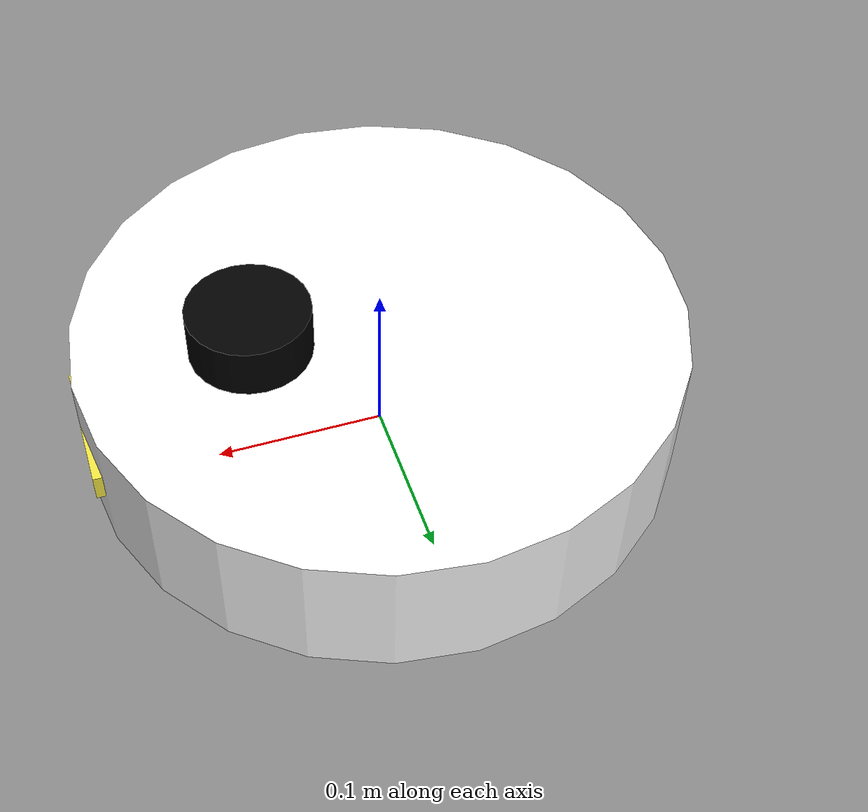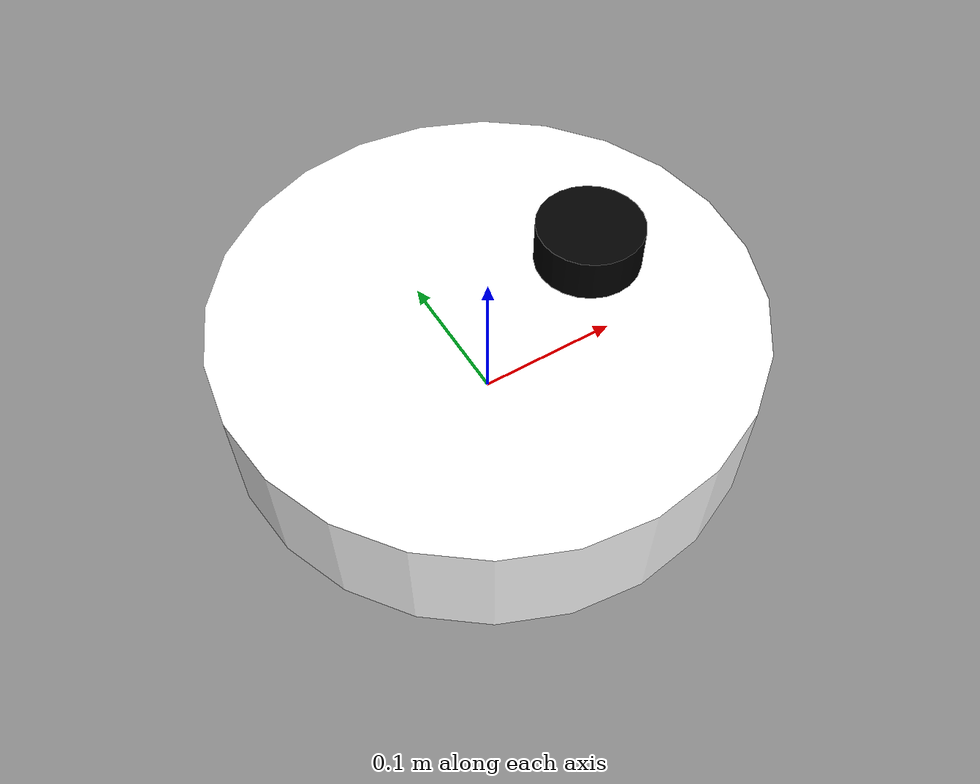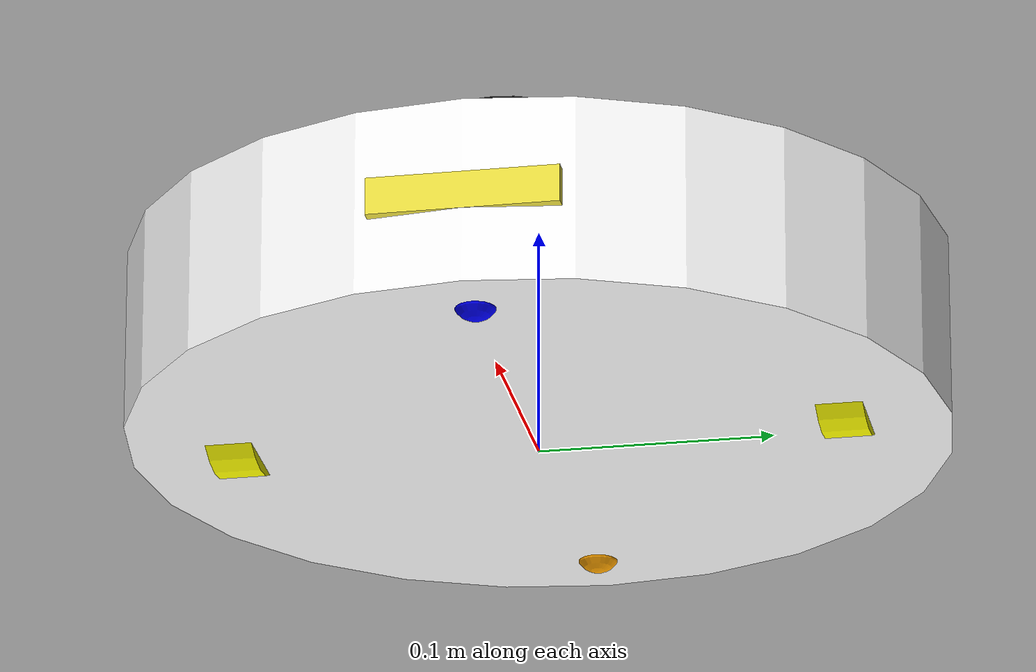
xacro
<?xml version="1.0"?>
<robot xmlns:xacro="http://www.ros.org/wiki/xacro" name="yttrium">

<xacro:property name="control_config"   value="$(find yttrium_description)/config/diff_drive_control.yaml" />

<xacro:property name="c_orange" value="1 0.647 0 1"/>
<xacro:property name="c_black" value="0 0 0 1"/>
<xacro:property name="wheel_separation" value="0.26" />

<xacro:property name="c_white" value="1 1 1 1"/>
<xacro:property name="c_yellow" value="1 1 0 1"/>
<xacro:property name="c_blue" value="0 0 1 1"/>

<xacro:property name="wheel_radius" value="0.04" />

  <link name="base_footprint"/>

  <!-- Base Link -->
  <link name="base_link">
    <visual>
      <geometry>
        <cylinder length="0.08" radius="0.175"/>
      </geometry>

      <material name="white">
        <color rgba="${c_white}"/>
      </material>
    </visual>
    <inertial>
      <mass value="4.2"/>
      <origin xyz="0 0 0"/>
      <inertia ixx="0.164" ixy="0" ixz="0" iyy="0.164" iyz="0" izz="0.025"/>
    </inertial>
    <collision>
      <geometry>
        <cylinder length="0.08" radius="0.175"/>
      </geometry>
    </collision>
  </link>

  <!-- IMU -->
  <link name="imu">
    <visual>
      <geometry>
        <box size="0.035 0.035 0.035"/>
      </geometry>
    </visual>
  </link>

  <joint name="imu_joint" type="fixed">
    <parent link="base_link"/>
    <child link="imu"/>
  </joint>

  <!-- Depth Camera -->
  <link name="camera_link">
    <visual>
      <geometry>
        <box size="0.02 0.016 0.08"/>
      </geometry>
    </visual>
    <inertial>
      <mass value="0.08"/>
      <origin xyz="0 0 0"/>
      <inertia ixx="0.000224" ixy="0" ixz="0" iyy="0.000256" iyz="0" izz="0.000032"/>
    </inertial>
    <collision>
      <geometry>
        <box size="0.02 0.016 0.08"/>
      </geometry>
    </collision>
  </link>

  <joint name="depth_camera_joint" type="fixed">
    <parent link="base_link"/>
    <child link="camera_link"/>
    <origin xyz="0.165 0 0" rpy="-1.5708 0 0"/>
  </joint>

  <!-- Empty Link for Depth Camera -->
  <link name = "optical_link">
  </link>

   <joint name="optical_depth_camera_joint" type="fixed">
    <parent link="camera_link"/>
    <child link="optical_link"/>
    <origin xyz="0.02 0 0" rpy="0 0 0"/>
  </joint>

  <!-- Lidar -->
  <link name="lidar_link">
    <visual>
      <geometry>
        <cylinder length="0.03" radius="0.035"/>
      </geometry>
      <material name="black">
        <color rgba="${c_black}"/>
      </material>
    </visual>
    <inertial>
      <mass value="0.20"/>
      <origin xyz="0 0 0"/>
      <inertia ixx="0.001225" ixy="0" ixz="0" iyy="0.001225" iyz="0" izz="0.0006125"/>
    </inertial>
    <collision>
      <geometry>
        <cylinder length="0.03" radius="0.035"/>
      </geometry>
    </collision>
  </link>
  <joint name="lidar_joint" type="fixed">
    <parent link="base_link"/>
    <child link="lidar_link"/>
    <origin xyz="0.075 0 0.055" rpy="0 0 0"/>
  </joint>
  <!-- Left Wheel -->
  <link name="wheel_left">
    <inertial>
      <mass value="0.05"/>
      <origin xyz="0 0 0"/>
      <inertia ixx="0.0004" ixy="0" ixz="0" iyy="0.0004" iyz="0" izz="0.0002"/>
    </inertial>
    <collision>
      <geometry>
        <cylinder length="0.02" radius="0.04"/>
      </geometry>
    </collision>
    <visual>
      <geometry>
        <cylinder length="0.02" radius="0.04"/>
      </geometry>
      <origin rpy="0 0 0" xyz="0 0 0"/>
      <material name="yellow">
        <color rgba="${c_yellow}"/>
      </material>
    </visual>
  </link>

  <joint name="base_to_wheel_left" type="continuous">
    <parent link="base_link"/>
    <child link="wheel_left"/>
    <origin xyz="0 0.13 -0.005" rpy="-1.5708 0 0"/>
    <axis xyz="0 0 1"/>
  </joint>

  <!-- Right Wheel -->
  <link name="wheel_right">
    <inertial>
      <mass value="0.05"/>
      <origin xyz="0 0 0"/>
      <inertia ixx="0.0004" ixy="0" ixz="0" iyy="0.0004" iyz="0" izz="0.0002"/>
    </inertial>
    <collision>
      <geometry>
        <cylinder length="0.02" radius="0.04"/>
      </geometry>
    </collision>
    <visual>
      <geometry>
        <cylinder length="0.02" radius="0.04"/>
      </geometry>
      <origin rpy="0 0 0" xyz="0 0 0"/>
      <material name="yellow">
        <color rgba="${c_yellow}"/>
      </material>
    </visual>
  </link>

  <joint name="base_to_wheel_right" type="continuous">
    <parent link="base_link"/>
    <child link="wheel_right"/>
    <origin xyz="0 -0.13 -0.005" rpy="-1.5708 0 0"/>
    <axis xyz="0 0 1"/>
  </joint>

  <!-- Ball Caster -->
  <link name="front_ball_caster">
    <inertial>
      <mass value="0.03"/>
      <origin xyz="0 0 0"/>
      <inertia ixx="0.0000024" ixy="0" ixz="0" iyy="0.0000024" iyz="0" izz="0.0000024"/>
    </inertial>
    <collision>
      <geometry>
        <sphere radius="0.01"/>
      </geometry>
    </collision>
    <visual>
      <geometry>
        <sphere radius="0.01"/>
      </geometry>
      <material name="blue">
        <color rgba="${c_blue}"/>
      </material>
    </visual>
  </link>

  <joint name="front_ball_joint" type="fixed">
    <parent link="base_link"/>
    <child link="front_ball_caster"/>
    <origin xyz="0.145 0 -0.035" rpy="0 0 0"/>
  </joint>

  <link name="back_ball_caster">
    <inertial>
      <mass value="0.03"/>
      <origin xyz="0 0 0"/>
      <inertia ixx="0.0000024" ixy="0" ixz="0" iyy="0.0000024" iyz="0" izz="0.0000024"/>
    </inertial>
    <collision>
      <geometry>
        <sphere radius="0.01"/>
      </geometry>
    </collision>
    <visual>
      <geometry>
        <sphere radius="0.01"/>
      </geometry>
      <material name="orange">
        <color rgba="${c_orange}"/>
      </material>
    </visual>
  </link>

  <joint name="back_ball_joint" type="fixed">
    <parent link="base_link"/>
    <child link="back_ball_caster"/>
    <origin xyz="-0.145 0 -0.035" rpy="0 0 0"/>
  </joint>

  <joint name="base_footprint_joint" type="fixed">
    <parent link="base_footprint"/>
    <child link="base_link"/>
    <origin xyz="0 0 0.045" rpy="0 0 0"/>
  </joint>

<!-- GAZEBO PLUGINS -->
  <!-- Differential Drive - https://gazebosim.org/api/gazebo/4.5/classignition_1_1gazebo_1_1systems_1_1DiffDrive.html -->
  <gazebo>
    <plugin filename="ignition-gazebo-diff-drive-system" name="ignition::gazebo::systems::DiffDrive">
      <!-- Wheel Joints -->
      <left_joint>base_to_wheel_left</left_joint>
      <right_joint>base_to_wheel_right</right_joint>

      <!-- Kinematics -->
      <wheel_separation>${wheel_separation}</wheel_separation>
      <wheel_radius>${wheel_radius}</wheel_radius>

      <odom_publish_frequency>50</odom_publish_frequency>

      <!-- TF Frames -->
      <frame_id>/odom</frame_id>
      <child_frame_id>/base_footprint</child_frame_id>
    </plugin>
  </gazebo>

  <gazebo>
      <plugin filename="ignition-gazebo-joint-state-publisher-system" name="ignition::gazebo::systems::JointStatePublisher">
        <update_rate>50</update_rate>
        <joint_name>base_to_wheel_left</joint_name>
        <joint_name>base_to_wheel_right</joint_name>
      </plugin>
  </gazebo>

  <gazebo reference="wheel_right">
    <mu1 value="1.0"/>
    <mu2 value="1.0"/>

  </gazebo>

  <gazebo reference="wheel_left">
    <mu1 value="1.0"/>
    <mu2 value="1.0"/>
  </gazebo>

  <gazebo reference="lidar_link">
    <sensor type="gpu_lidar" name="generic_lidar_sensor">

      <topic>/model/gz_example_robot/scan</topic>
      <frame_id>laser</frame_id>
      <ignition_frame_id>laser</ignition_frame_id>

      <update_rate>10.0</update_rate>
      <ray>
        <scan>
          <horizontal>
            <samples>1024</samples>
            <resolution>1</resolution>
            <min_angle>-${pi*0.75}</min_angle>
            <max_angle>${pi*0.75}</max_angle>
          </horizontal>
        </scan>
        <range>
          <min>0.20</min>
          <max>20.0</max>
          <resolution>0.03</resolution>
        </range>
        <noise>
          <type>gaussian</type>
          <mean>0.0</mean>
          <stddev>0.001</stddev>
        </noise>
      </ray>
      <always_on>1</always_on>
      <visualize>true</visualize>
    </sensor>
  </gazebo>
  <gazebo>
    <plugin filename="libignition-gazebo-sensors-system.so" name="ignition::gazebo::systems::Sensors">
      <render_engine>ogre2</render_engine>
    </plugin>
  </gazebo>

  <gazebo reference="imu_link">
    <sensor name="imu_sensor" type="imu">
      <topic>/model/gz_example_robot/imu</topic>
      <frame_id>imu_link</frame_id>
      <ignition_frame_id>imu_link</ignition_frame_id>
      <plugin filename="libignition-gazebo-imu-system.so" name="ignition::gazebo::systems::Imu">
        <initial_orientation_as_reference>false</initial_orientation_as_reference>
      </plugin>
      <always_on>true</always_on>
      <update_rate>100</update_rate>
      <visualize>true</visualize>
     <imu>
     	<angular_velocity>
     	  <x>
     	    <noise type="gaussian">
              <mean>0.0</mean>
              <stddev>2e-4</stddev>
              <bias_mean>0.0000075</bias_mean>
              <bias_stddev>0.0000008</bias_stddev>
            </noise>
          </x>
          <y>
            <noise type="gaussian">
              <mean>0.0</mean>
              <stddev>2e-4</stddev>
              <bias_mean>0.0000075</bias_mean>
              <bias_stddev>0.0000008</bias_stddev>
            </noise>
          </y>
          <z>
            <noise type="gaussian">
              <mean>0.0</mean>
              <stddev>2e-4</stddev>
              <bias_mean>0.0000075</bias_mean>
              <bias_stddev>0.0000008</bias_stddev>
            </noise>
          </z>
        </angular_velocity>
        <linear_acceleration>
          <x>
            <noise type="gaussian">
              <mean>0.0</mean>
              <stddev>1.7e-2</stddev>
              <bias_mean>0.1</bias_mean>
              <bias_stddev>0.001</bias_stddev>
            </noise>
          </x>
          <y>
            <noise type="gaussian">
              <mean>0.0</mean>
              <stddev>1.7e-2</stddev>
              <bias_mean>0.1</bias_mean>
              <bias_stddev>0.001</bias_stddev>
            </noise>
          </y>
          <z>
            <noise type="gaussian">
              <mean>0.0</mean>
              <stddev>1.7e-2</stddev>
              <bias_mean>0.1</bias_mean>
              <bias_stddev>0.001</bias_stddev>
            </noise>
          </z>
        </linear_acceleration>
      </imu>
    </sensor>
  </gazebo>

  <gazebo reference="camera_link">
    <sensor type="depth" name="depth_camera_sensor">
      <camera name="head_camera">
        <horizontal_fov>${87*pi/180}</horizontal_fov>
        <vertical_fov>${58*pi/180}</vertical_fov>
        <image>
          <width>1280</width>
          <height>720</height>
        </image>
        <clip>
          <near>0.3</near>
          <far>4.0</far>
        </clip>
      </camera>
      <always_on>1</always_on>
      <update_rate>60</update_rate>
      <visualize>true</visualize>
      <topic>/model/yttrium/depth_camera</topic>
      <pose>0 0 0 1.5708 0 0</pose>
      <frame_id>depth</frame_id>
      <ignition_frame_id>depth</ignition_frame_id>
    </sensor>
      <plugin name="camera_plugin" filename="libgazebo_ros_openni_kinect.so">
        <alwaysOn>true</alwaysOn>
        <updateRate>60</updateRate>
        <cameraName>yttrium_camera</cameraName>
        <imageTopicName>/camera/color/image_raw</imageTopicName>
        <cameraInfoTopicName>/camera/color/camera_info</cameraInfoTopicName>
        <depthImageTopicName>/camera/depth/image_raw</depthImageTopicName>
        <depthImageCameraInfoTopicName>/camera/depth/camera_info</depthImageCameraInfoTopicName>
        <pointCloudTopicName>/camera/depth/points</pointCloudTopicName>
        <frameName>optical_link</frameName>
      </plugin>
  </gazebo>
</robot>
